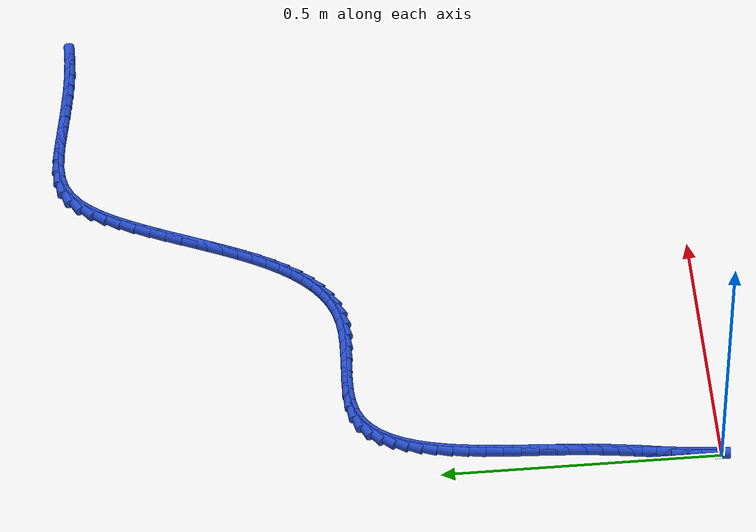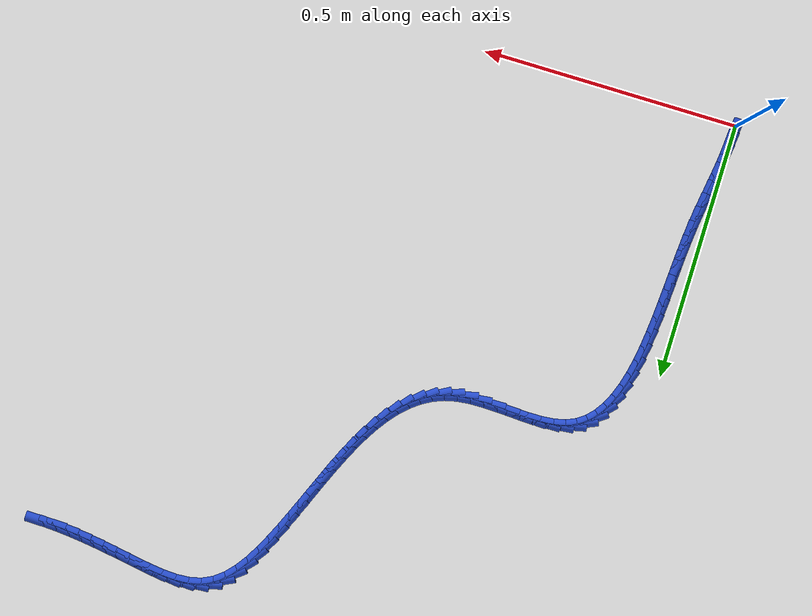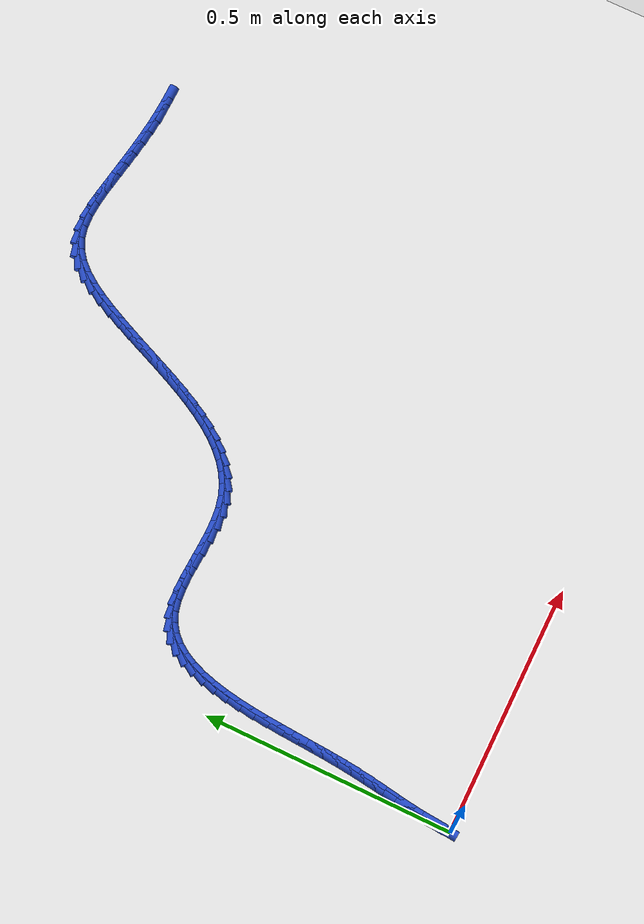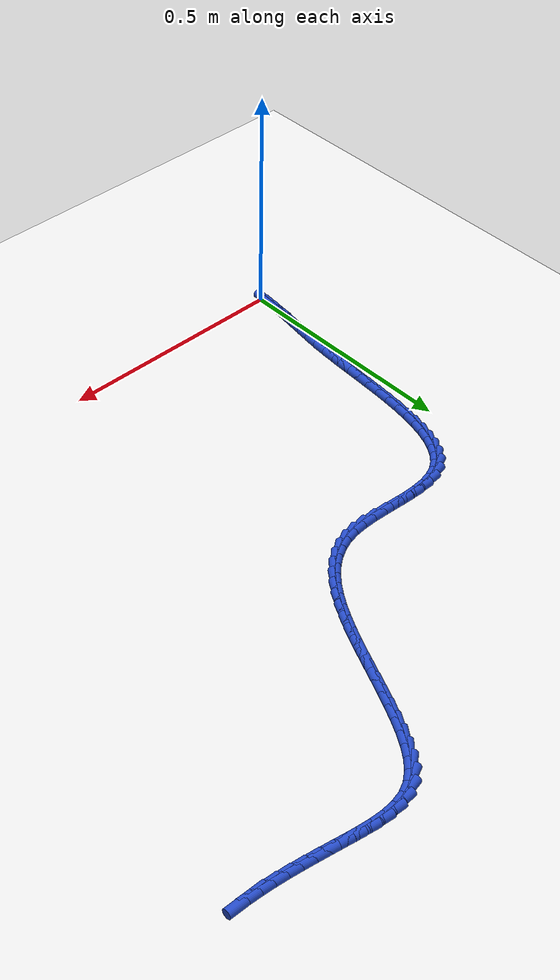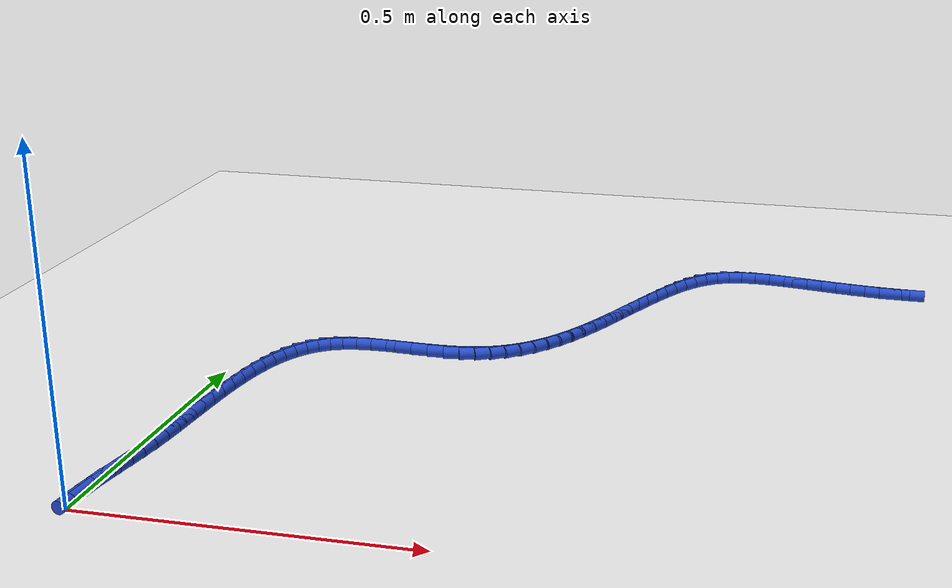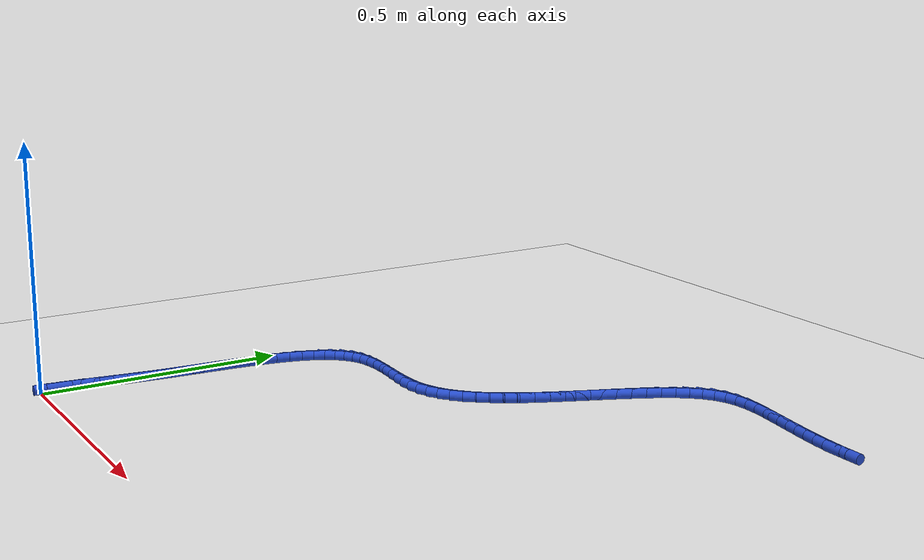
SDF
<sdf version="1.6">
 <world name="default">
  <model name="ground_plane">
   <static>1</static>
   <link name="link">
    <collision name="collision">
     <geometry><plane><normal>0 0 1</normal><size>100 100</size></plane></geometry>
     <surface><friction><ode><mu>100</mu><mu2>50</mu2></ode></friction></surface>
    </collision>
    <visual name="visual">
     <cast_shadows>0</cast_shadows>
     <geometry><plane><normal>0 0 1</normal><size>100 100</size></plane></geometry>
     <material>
      <script><uri>file://media/materials/scripts/gazebo.material</uri><name>Gazebo/WhiteGlow</name></script>
     </material>
    </visual>
   </link>
  </model>
  <model name="line">
   <link name="link_1">
    <pose>0.0013273431235054972 0.025375704951247566 0.01 0 1.57 1.4831038697782482</pose>
    <collision name="collision">
     <geometry><cylinder><radius>0.01</radius><length>0.08</length></cylinder></geometry>
    </collision>
    <visual name="visual">
     <material>
      <script><name>Gazebo/Blue</name><uri>file://media/materials/scripts/gazebo.material</uri></script>
     </material>
     <geometry><cylinder><radius>0.01</radius><length>0.08</length></cylinder></geometry>
    </visual>
   </link>
   <link name="link_2">
    <pose>0.003543218310889586 0.05057960898288051 0.01 0 1.57 1.4558953160932735</pose>
    <collision name="collision">
     <geometry><cylinder><radius>0.01</radius><length>0.08</length></cylinder></geometry>
    </collision>
    <visual name="visual">
     <material>
      <script><name>Gazebo/Blue</name><uri>file://media/materials/scripts/gazebo.material</uri></script>
     </material>
     <geometry><cylinder><radius>0.01</radius><length>0.08</length></cylinder></geometry>
    </visual>
   </link>
   <link name="link_3">
    <pose>0.006453111025996179 0.07579327515895934 0.01 0 1.57 1.4373915896565748</pose>
    <collision name="collision">
     <geometry><cylinder><radius>0.01</radius><length>0.08</length></cylinder></geometry>
    </collision>
    <visual name="visual">
     <material>
      <script><name>Gazebo/Blue</name><uri>file://media/materials/scripts/gazebo.material</uri></script>
     </material>
     <geometry><cylinder><radius>0.01</radius><length>0.08</length></cylinder></geometry>
    </visual>
   </link>
   <link name="link_4">
    <pose>0.009862506732669196 0.1011982665435445 0.01 0 1.57 1.4276894007576038</pose>
    <collision name="collision">
     <geometry><cylinder><radius>0.01</radius><length>0.08</length></cylinder></geometry>
    </collision>
    <visual name="visual">
     <material>
      <script><name>Gazebo/Blue</name><uri>file://media/materials/scripts/gazebo.material</uri></script>
     </material>
     <geometry><cylinder><radius>0.01</radius><length>0.08</length></cylinder></geometry>
    </visual>
   </link>
   <link name="link_5">
    <pose>0.013576890894752551 0.1269761462006965 0.01 0 1.57 1.4265518259724992</pose>
    <collision name="collision">
     <geometry><cylinder><radius>0.01</radius><length>0.08</length></cylinder></geometry>
    </collision>
    <visual name="visual">
     <material>
      <script><name>Gazebo/Blue</name><uri>file://media/materials/scripts/gazebo.material</uri></script>
     </material>
     <geometry><cylinder><radius>0.01</radius><length>0.08</length></cylinder></geometry>
    </visual>
   </link>
   <link name="link_6">
    <pose>0.01740174897609017 0.15330847719447588 0.01 0 1.57 1.4334672283953678</pose>
    <collision name="collision">
     <geometry><cylinder><radius>0.01</radius><length>0.08</length></cylinder></geometry>
    </collision>
    <visual name="visual">
     <material>
      <script><name>Gazebo/Blue</name><uri>file://media/materials/scripts/gazebo.material</uri></script>
     </material>
     <geometry><cylinder><radius>0.01</radius><length>0.08</length></cylinder></geometry>
    </visual>
   </link>
   <link name="link_7">
    <pose>0.021142566440525958 0.1803768225889431 0.01 0 1.57 1.447707330328703</pose>
    <collision name="collision">
     <geometry><cylinder><radius>0.01</radius><length>0.08</length></cylinder></geometry>
    </collision>
    <visual name="visual">
     <material>
      <script><name>Gazebo/Blue</name><uri>file://media/materials/scripts/gazebo.material</uri></script>
     </material>
     <geometry><cylinder><radius>0.01</radius><length>0.08</length></cylinder></geometry>
    </visual>
   </link>
   <link name="link_8">
    <pose>0.02460482875190385 0.20836274544815864 0.01 0 1.57 1.4683490416714402</pose>
    <collision name="collision">
     <geometry><cylinder><radius>0.01</radius><length>0.08</length></cylinder></geometry>
    </collision>
    <visual name="visual">
     <material>
      <script><name>Gazebo/Blue</name><uri>file://media/materials/scripts/gazebo.material</uri></script>
     </material>
     <geometry><cylinder><radius>0.01</radius><length>0.08</length></cylinder></geometry>
    </visual>
   </link>
   <link name="link_9">
    <pose>0.027594875719136228 0.23744676667266695 0.01 0 1.57 1.489880821835114</pose>
    <collision name="collision">
     <geometry><cylinder><radius>0.01</radius><length>0.08</length></cylinder></geometry>
    </collision>
    <visual name="visual">
     <material>
      <script><name>Gazebo/Blue</name><uri>file://media/materials/scripts/gazebo.material</uri></script>
     </material>
     <geometry><cylinder><radius>0.01</radius><length>0.08</length></cylinder></geometry>
    </visual>
   </link>
   <link name="link_10">
    <pose>0.030044636717430816 0.2676562080999955 0.01 0 1.57 1.5033187484475186</pose>
    <collision name="collision">
     <geometry><cylinder><radius>0.01</radius><length>0.08</length></cylinder></geometry>
    </collision>
    <visual name="visual">
     <material>
      <script><name>Gazebo/Blue</name><uri>file://media/materials/scripts/gazebo.material</uri></script>
     </material>
     <geometry><cylinder><radius>0.01</radius><length>0.08</length></cylinder></geometry>
    </visual>
   </link>
   <link name="link_11">
    <pose>0.032142922190807964 0.29870503799691056 0.01 0 1.57 1.5085578318496928</pose>
    <collision name="collision">
     <geometry><cylinder><radius>0.01</radius><length>0.08</length></cylinder></geometry>
    </collision>
    <visual name="visual">
     <material>
      <script><name>Gazebo/Blue</name><uri>file://media/materials/scripts/gazebo.material</uri></script>
     </material>
     <geometry><cylinder><radius>0.01</radius><length>0.08</length></cylinder></geometry>
    </visual>
   </link>
   <link name="link_12">
    <pose>0.03410995069347177 0.3302689117894446 0.01 0 1.57 1.5061403062061889</pose>
    <collision name="collision">
     <geometry><cylinder><radius>0.01</radius><length>0.08</length></cylinder></geometry>
    </collision>
    <visual name="visual">
     <material>
      <script><name>Gazebo/Blue</name><uri>file://media/materials/scripts/gazebo.material</uri></script>
     </material>
     <geometry><cylinder><radius>0.01</radius><length>0.08</length></cylinder></geometry>
    </visual>
   </link>
   <link name="link_13">
    <pose>0.03616594077962635 0.3620234849036305 0.01 0 1.57 1.4961377276590273</pose>
    <collision name="collision">
     <geometry><cylinder><radius>0.01</radius><length>0.08</length></cylinder></geometry>
    </collision>
    <visual name="visual">
     <material>
      <script><name>Gazebo/Blue</name><uri>file://media/materials/scripts/gazebo.material</uri></script>
     </material>
     <geometry><cylinder><radius>0.01</radius><length>0.08</length></cylinder></geometry>
    </visual>
   </link>
   <link name="link_14">
    <pose>0.03853111100347581 0.3936444127655007 0.01 0 1.57 1.4781770966286956</pose>
    <collision name="collision">
     <geometry><cylinder><radius>0.01</radius><length>0.08</length></cylinder></geometry>
    </collision>
    <visual name="visual">
     <material>
      <script><name>Gazebo/Blue</name><uri>file://media/materials/scripts/gazebo.material</uri></script>
     </material>
     <geometry><cylinder><radius>0.01</radius><length>0.08</length></cylinder></geometry>
    </visual>
   </link>
   <link name="link_15">
    <pose>0.04142567991922423 0.4248073508010879 0.01 0 1.57 1.4514156284007513</pose>
    <collision name="collision">
     <geometry><cylinder><radius>0.01</radius><length>0.08</length></cylinder></geometry>
    </collision>
    <visual name="visual">
     <material>
      <script><name>Gazebo/Blue</name><uri>file://media/materials/scripts/gazebo.material</uri></script>
     </material>
     <geometry><cylinder><radius>0.01</radius><length>0.08</length></cylinder></geometry>
    </visual>
   </link>
   <link name="link_16">
    <pose>0.045069866081075736 0.4551879544364248 0.01 0 1.57 1.4144669831270131</pose>
    <collision name="collision">
     <geometry><cylinder><radius>0.01</radius><length>0.08</length></cylinder></geometry>
    </collision>
    <visual name="visual">
     <material>
      <script><name>Gazebo/Blue</name><uri>file://media/materials/scripts/gazebo.material</uri></script>
     </material>
     <geometry><cylinder><radius>0.01</radius><length>0.08</length></cylinder></geometry>
    </visual>
   </link>
   <link name="link_17">
    <pose>0.04968388804323444 0.48446187909754396 0.01 0 1.57 1.3652814309231334</pose>
    <collision name="collision">
     <geometry><cylinder><radius>0.01</radius><length>0.08</length></cylinder></geometry>
    </collision>
    <visual name="visual">
     <material>
      <script><name>Gazebo/Blue</name><uri>file://media/materials/scripts/gazebo.material</uri></script>
     </material>
     <geometry><cylinder><radius>0.01</radius><length>0.08</length></cylinder></geometry>
    </visual>
   </link>
   <link name="link_18">
    <pose>0.0554879643599044 0.5123047802104779 0.01 0 1.57 1.300995292122116</pose>
    <collision name="collision">
     <geometry><cylinder><radius>0.01</radius><length>0.08</length></cylinder></geometry>
    </collision>
    <visual name="visual">
     <material>
      <script><name>Gazebo/Blue</name><uri>file://media/materials/scripts/gazebo.material</uri></script>
     </material>
     <geometry><cylinder><radius>0.01</radius><length>0.08</length></cylinder></geometry>
    </visual>
   </link>
   <link name="link_19">
    <pose>0.0627023135852898 0.5383923132012595 0.01 0 1.57 1.217811283853974</pose>
    <collision name="collision">
     <geometry><cylinder><radius>0.01</radius><length>0.08</length></cylinder></geometry>
    </collision>
    <visual name="visual">
     <material>
      <script><name>Gazebo/Blue</name><uri>file://media/materials/scripts/gazebo.material</uri></script>
     </material>
     <geometry><cylinder><radius>0.01</radius><length>0.08</length></cylinder></geometry>
    </visual>
   </link>
   <link name="link_20">
    <pose>0.07154715427359462 0.562400133495921 0.01 0 1.57 1.111093956603589</pose>
    <collision name="collision">
     <geometry><cylinder><radius>0.01</radius><length>0.08</length></cylinder></geometry>
    </collision>
    <visual name="visual">
     <material>
      <script><name>Gazebo/Blue</name><uri>file://media/materials/scripts/gazebo.material</uri></script>
     </material>
     <geometry><cylinder><radius>0.01</radius><length>0.08</length></cylinder></geometry>
    </visual>
   </link>
   <link name="link_21">
    <pose>0.08224270497902311 0.5840038965204956 0.01 0 1.57 0.9761151240698267</pose>
    <collision name="collision">
     <geometry><cylinder><radius>0.01</radius><length>0.08</length></cylinder></geometry>
    </collision>
    <visual name="visual">
     <material>
      <script><name>Gazebo/Blue</name><uri>file://media/materials/scripts/gazebo.material</uri></script>
     </material>
     <geometry><cylinder><radius>0.01</radius><length>0.08</length></cylinder></geometry>
    </visual>
   </link>
   <link name="link_22">
    <pose>0.09500918425577928 0.6028792577010152 0.01 0 1.57 0.810165843333273</pose>
    <collision name="collision">
     <geometry><cylinder><radius>0.01</radius><length>0.08</length></cylinder></geometry>
    </collision>
    <visual name="visual">
     <material>
      <script><name>Gazebo/Blue</name><uri>file://media/materials/scripts/gazebo.material</uri></script>
     </material>
     <geometry><cylinder><radius>0.01</radius><length>0.08</length></cylinder></geometry>
    </visual>
   </link>
   <link name="link_23">
    <pose>0.11006681065806723 0.6187018724635133 0.01 0 1.57 0.6163280557996347</pose>
    <collision name="collision">
     <geometry><cylinder><radius>0.01</radius><length>0.08</length></cylinder></geometry>
    </collision>
    <visual name="visual">
     <material>
      <script><name>Gazebo/Blue</name><uri>file://media/materials/scripts/gazebo.material</uri></script>
     </material>
     <geometry><cylinder><radius>0.01</radius><length>0.08</length></cylinder></geometry>
    </visual>
   </link>
   <link name="link_24">
    <pose>0.1276358027400911 0.6311473962340217 0.01 0 1.57 0.4068288492646526</pose>
    <collision name="collision">
     <geometry><cylinder><radius>0.01</radius><length>0.08</length></cylinder></geometry>
    </collision>
    <visual name="visual">
     <material>
      <script><name>Gazebo/Blue</name><uri>file://media/materials/scripts/gazebo.material</uri></script>
     </material>
     <geometry><cylinder><radius>0.01</radius><length>0.08</length></cylinder></geometry>
    </visual>
   </link>
   <link name="link_25">
    <pose>0.147934940979745 0.6398936085173469 0.01 0 1.57 0.21703779530122946</pose>
    <collision name="collision">
     <geometry><cylinder><radius>0.01</radius><length>0.08</length></cylinder></geometry>
    </collision>
    <visual name="visual">
     <material>
      <script><name>Gazebo/Blue</name><uri>file://media/materials/scripts/gazebo.material</uri></script>
     </material>
     <geometry><cylinder><radius>0.01</radius><length>0.08</length></cylinder></geometry>
    </visual>
   </link>
   <link name="link_26">
    <pose>0.1709463238221766 0.644967874774373 0.01 0 1.57 0.08568359429457617</pose>
    <collision name="collision">
     <geometry><cylinder><radius>0.01</radius><length>0.08</length></cylinder></geometry>
    </collision>
    <visual name="visual">
     <material>
      <script><name>Gazebo/Blue</name><uri>file://media/materials/scripts/gazebo.material</uri></script>
     </material>
     <geometry><cylinder><radius>0.01</radius><length>0.08</length></cylinder></geometry>
    </visual>
   </link>
   <link name="link_27">
    <pose>0.19615408535262951 0.6471330676983266 0.01 0 1.57 0.004173853943164832</pose>
    <collision name="collision">
     <geometry><cylinder><radius>0.01</radius><length>0.08</length></cylinder></geometry>
    </collision>
    <visual name="visual">
     <material>
      <script><name>Gazebo/Blue</name><uri>file://media/materials/scripts/gazebo.material</uri></script>
     </material>
     <geometry><cylinder><radius>0.01</radius><length>0.08</length></cylinder></geometry>
    </visual>
   </link>
   <link name="link_28">
    <pose>0.22297941340466867 0.6472450333497807 0.01 0 1.57 -0.038934246516687934</pose>
    <collision name="collision">
     <geometry><cylinder><radius>0.01</radius><length>0.08</length></cylinder></geometry>
    </collision>
    <visual name="visual">
     <material>
      <script><name>Gazebo/Blue</name><uri>file://media/materials/scripts/gazebo.material</uri></script>
     </material>
     <geometry><cylinder><radius>0.01</radius><length>0.08</length></cylinder></geometry>
    </visual>
   </link>
   <link name="link_29">
    <pose>0.2508434958118586 0.646159617789307 0.01 0 1.57 -0.05033696028064199</pose>
    <collision name="collision">
     <geometry><cylinder><radius>0.01</radius><length>0.08</length></cylinder></geometry>
    </collision>
    <visual name="visual">
     <material>
      <script><name>Gazebo/Blue</name><uri>file://media/materials/scripts/gazebo.material</uri></script>
     </material>
     <geometry><cylinder><radius>0.01</radius><length>0.08</length></cylinder></geometry>
    </visual>
   </link>
   <link name="link_30">
    <pose>0.2791675204077644 0.6447326670774781 0.01 0 1.57 -0.03234591361597923</pose>
    <collision name="collision">
     <geometry><cylinder><radius>0.01</radius><length>0.08</length></cylinder></geometry>
    </collision>
    <visual name="visual">
     <material>
      <script><name>Gazebo/Blue</name><uri>file://media/materials/scripts/gazebo.material</uri></script>
     </material>
     <geometry><cylinder><radius>0.01</radius><length>0.08</length></cylinder></geometry>
    </visual>
   </link>
   <link name="link_31">
    <pose>0.3073726750259505 0.6438200272748664 0.01 0 1.57 0.016630934942488275</pose>
    <collision name="collision">
     <geometry><cylinder><radius>0.01</radius><length>0.08</length></cylinder></geometry>
    </collision>
    <visual name="visual">
     <material>
      <script><name>Gazebo/Blue</name><uri>file://media/materials/scripts/gazebo.material</uri></script>
     </material>
     <geometry><cylinder><radius>0.01</radius><length>0.08</length></cylinder></geometry>
    </visual>
   </link>
   <link name="link_32">
    <pose>0.3348801474999821 0.6442775444420444 0.01 0 1.57 0.10194879602931628</pose>
    <collision name="collision">
     <geometry><cylinder><radius>0.01</radius><length>0.08</length></cylinder></geometry>
    </collision>
    <visual name="visual">
     <material>
      <script><name>Gazebo/Blue</name><uri>file://media/materials/scripts/gazebo.material</uri></script>
     </material>
     <geometry><cylinder><radius>0.01</radius><length>0.08</length></cylinder></geometry>
    </visual>
   </link>
   <link name="link_33">
    <pose>0.3611111256634238 0.6469610646395844 0.01 0 1.57 0.22973171142016255</pose>
    <collision name="collision">
     <geometry><cylinder><radius>0.01</radius><length>0.08</length></cylinder></geometry>
    </collision>
    <visual name="visual">
     <material>
      <script><name>Gazebo/Blue</name><uri>file://media/materials/scripts/gazebo.material</uri></script>
     </material>
     <geometry><cylinder><radius>0.01</radius><length>0.08</length></cylinder></geometry>
    </visual>
   </link>
   <link name="link_34">
    <pose>0.38552446452016487 0.6526703774179967 0.01 0 1.57 0.37688570544076144</pose>
    <collision name="collision">
     <geometry><cylinder><radius>0.01</radius><length>0.08</length></cylinder></geometry>
    </collision>
    <visual name="visual">
     <material>
      <script><name>Gazebo/Blue</name><uri>file://media/materials/scripts/gazebo.material</uri></script>
     </material>
     <geometry><cylinder><radius>0.01</radius><length>0.08</length></cylinder></geometry>
    </visual>
   </link>
   <link name="link_35">
    <pose>0.4080066002983976 0.6615689433708777 0.01 0 1.57 0.5196748217189355</pose>
    <collision name="collision">
     <geometry><cylinder><radius>0.01</radius><length>0.08</length></cylinder></geometry>
    </collision>
    <visual name="visual">
     <material>
      <script><name>Gazebo/Blue</name><uri>file://media/materials/scripts/gazebo.material</uri></script>
     </material>
     <geometry><cylinder><radius>0.01</radius><length>0.08</length></cylinder></geometry>
    </visual>
   </link>
   <link name="link_36">
    <pose>0.42871501488762936 0.6734168513038742 0.01 0 1.57 0.6511174869187879</pose>
    <collision name="collision">
     <geometry><cylinder><radius>0.01</radius><length>0.08</length></cylinder></geometry>
    </collision>
    <visual name="visual">
     <material>
      <script><name>Gazebo/Blue</name><uri>file://media/materials/scripts/gazebo.material</uri></script>
     </material>
     <geometry><cylinder><radius>0.01</radius><length>0.08</length></cylinder></geometry>
    </visual>
   </link>
   <link name="link_37">
    <pose>0.4478114962008734 0.6879677817724799 0.01 0 1.57 0.7669693919560285</pose>
    <collision name="collision">
     <geometry><cylinder><radius>0.01</radius><length>0.08</length></cylinder></geometry>
    </collision>
    <visual name="visual">
     <material>
      <script><name>Gazebo/Blue</name><uri>file://media/materials/scripts/gazebo.material</uri></script>
     </material>
     <geometry><cylinder><radius>0.01</radius><length>0.08</length></cylinder></geometry>
    </visual>
   </link>
   <link name="link_38">
    <pose>0.4654578321511435 0.7049754153321884 0.01 0 1.57 0.8656180144133736</pose>
    <collision name="collision">
     <geometry><cylinder><radius>0.01</radius><length>0.08</length></cylinder></geometry>
    </collision>
    <visual name="visual">
     <material>
      <script><name>Gazebo/Blue</name><uri>file://media/materials/scripts/gazebo.material</uri></script>
     </material>
     <geometry><cylinder><radius>0.01</radius><length>0.08</length></cylinder></geometry>
    </visual>
   </link>
   <link name="link_39">
    <pose>0.48181581065145324 0.7241934325384934 0.01 0 1.57 0.9473857293996624</pose>
    <collision name="collision">
     <geometry><cylinder><radius>0.01</radius><length>0.08</length></cylinder></geometry>
    </collision>
    <visual name="visual">
     <material>
      <script><name>Gazebo/Blue</name><uri>file://media/materials/scripts/gazebo.material</uri></script>
     </material>
     <geometry><cylinder><radius>0.01</radius><length>0.08</length></cylinder></geometry>
    </visual>
   </link>
   <link name="link_40">
    <pose>0.49704721961481596 0.7453755139468878 0.01 0 1.57 1.013635385515416</pose>
    <collision name="collision">
     <geometry><cylinder><radius>0.01</radius><length>0.08</length></cylinder></geometry>
    </collision>
    <visual name="visual">
     <material>
      <script><name>Gazebo/Blue</name><uri>file://media/materials/scripts/gazebo.material</uri></script>
     </material>
     <geometry><cylinder><radius>0.01</radius><length>0.08</length></cylinder></geometry>
    </visual>
   </link>
   <link name="link_41">
    <pose>0.5113138469542453 0.7682753401128655 0.01 0 1.57 1.0660823713414747</pose>
    <collision name="collision">
     <geometry><cylinder><radius>0.01</radius><length>0.08</length></cylinder></geometry>
    </collision>
    <visual name="visual">
     <material>
      <script><name>Gazebo/Blue</name><uri>file://media/materials/scripts/gazebo.material</uri></script>
     </material>
     <geometry><cylinder><radius>0.01</radius><length>0.08</length></cylinder></geometry>
    </visual>
   </link>
   <link name="link_42">
    <pose>0.5247774805827551 0.7926465915919201 0.01 0 1.57 1.1063911110405942</pose>
    <collision name="collision">
     <geometry><cylinder><radius>0.01</radius><length>0.08</length></cylinder></geometry>
    </collision>
    <visual name="visual">
     <material>
      <script><name>Gazebo/Blue</name><uri>file://media/materials/scripts/gazebo.material</uri></script>
     </material>
     <geometry><cylinder><radius>0.01</radius><length>0.08</length></cylinder></geometry>
    </visual>
   </link>
   <link name="link_43">
    <pose>0.5375999084133589 0.8182429489395453 0.01 0 1.57 1.135985259736726</pose>
    <collision name="collision">
     <geometry><cylinder><radius>0.01</radius><length>0.08</length></cylinder></geometry>
    </collision>
    <visual name="visual">
     <material>
      <script><name>Gazebo/Blue</name><uri>file://media/materials/scripts/gazebo.material</uri></script>
     </material>
     <geometry><cylinder><radius>0.01</radius><length>0.08</length></cylinder></geometry>
    </visual>
   </link>
   <link name="link_44">
    <pose>0.5499429183590699 0.8448180927112341 0.01 0 1.57 1.1559817338353384</pose>
    <collision name="collision">
     <geometry><cylinder><radius>0.01</radius><length>0.08</length></cylinder></geometry>
    </collision>
    <visual name="visual">
     <material>
      <script><name>Gazebo/Blue</name><uri>file://media/materials/scripts/gazebo.material</uri></script>
     </material>
     <geometry><cylinder><radius>0.01</radius><length>0.08</length></cylinder></geometry>
    </visual>
   </link>
   <link name="link_45">
    <pose>0.5619682983329021 0.8721257034624803 0.01 0 1.57 1.167184098190263</pose>
    <collision name="collision">
     <geometry><cylinder><radius>0.01</radius><length>0.08</length></cylinder></geometry>
    </collision>
    <visual name="visual">
     <material>
      <script><name>Gazebo/Blue</name><uri>file://media/materials/scripts/gazebo.material</uri></script>
     </material>
     <geometry><cylinder><radius>0.01</radius><length>0.08</length></cylinder></geometry>
    </visual>
   </link>
   <link name="link_46">
    <pose>0.5738378362478687 0.8999194617487771 0.01 0 1.57 1.17009828035698</pose>
    <collision name="collision">
     <geometry><cylinder><radius>0.01</radius><length>0.08</length></cylinder></geometry>
    </collision>
    <visual name="visual">
     <material>
      <script><name>Gazebo/Blue</name><uri>file://media/materials/scripts/gazebo.material</uri></script>
     </material>
     <geometry><cylinder><radius>0.01</radius><length>0.08</length></cylinder></geometry>
    </visual>
   </link>
   <link name="link_47">
    <pose>0.5857133200169835 0.9279530481256186 0.01 0 1.57 1.1649522408020414</pose>
    <collision name="collision">
     <geometry><cylinder><radius>0.01</radius><length>0.08</length></cylinder></geometry>
    </collision>
    <visual name="visual">
     <material>
      <script><name>Gazebo/Blue</name><uri>file://media/materials/scripts/gazebo.material</uri></script>
     </material>
     <geometry><cylinder><radius>0.01</radius><length>0.08</length></cylinder></geometry>
    </visual>
   </link>
   <link name="link_48">
    <pose>0.5977565375532603 0.955980143148498 0.01 0 1.57 1.1517120613173357</pose>
    <collision name="collision">
     <geometry><cylinder><radius>0.01</radius><length>0.08</length></cylinder></geometry>
    </collision>
    <visual name="visual">
     <material>
      <script><name>Gazebo/Blue</name><uri>file://media/materials/scripts/gazebo.material</uri></script>
     </material>
     <geometry><cylinder><radius>0.01</radius><length>0.08</length></cylinder></geometry>
    </visual>
   </link>
   <link name="link_49">
    <pose>0.6101292767697122 0.9837544273729087 0.01 0 1.57 1.1300278328495221</pose>
    <collision name="collision">
     <geometry><cylinder><radius>0.01</radius><length>0.08</length></cylinder></geometry>
    </collision>
    <visual name="visual">
     <material>
      <script><name>Gazebo/Blue</name><uri>file://media/materials/scripts/gazebo.material</uri></script>
     </material>
     <geometry><cylinder><radius>0.01</radius><length>0.08</length></cylinder></geometry>
    </visual>
   </link>
   <link name="link_50">
    <pose>0.6229941832206943 1.011026781777434 0.01 0 1.57 1.0948579477988312</pose>
    <collision name="collision">
     <geometry><cylinder><radius>0.01</radius><length>0.08</length></cylinder></geometry>
    </collision>
    <visual name="visual">
     <material>
      <script><name>Gazebo/Blue</name><uri>file://media/materials/scripts/gazebo.material</uri></script>
     </material>
     <geometry><cylinder><radius>0.01</radius><length>0.08</length></cylinder></geometry>
    </visual>
   </link>
   <link name="link_51">
    <pose>0.6365701661014206 1.0373644273626608 0.01 0 1.57 1.036645545284551</pose>
    <collision name="collision">
     <geometry><cylinder><radius>0.01</radius><length>0.08</length></cylinder></geometry>
    </collision>
    <visual name="visual">
     <material>
      <script><name>Gazebo/Blue</name><uri>file://media/materials/scripts/gazebo.material</uri></script>
     </material>
     <geometry><cylinder><radius>0.01</radius><length>0.08</length></cylinder></geometry>
    </visual>
   </link>
   <link name="link_52">
    <pose>0.651166224523165 1.0620405068976824 0.01 0 1.57 0.9495851570418905</pose>
    <collision name="collision">
     <geometry><cylinder><radius>0.01</radius><length>0.08</length></cylinder></geometry>
    </collision>
    <visual name="visual">
     <material>
      <script><name>Gazebo/Blue</name><uri>file://media/materials/scripts/gazebo.material</uri></script>
     </material>
     <geometry><cylinder><radius>0.01</radius><length>0.08</length></cylinder></geometry>
    </visual>
   </link>
   <link name="link_53">
    <pose>0.6670994540881329 1.084301733981288 0.01 0 1.57 0.82642115321409</pose>
    <collision name="collision">
     <geometry><cylinder><radius>0.01</radius><length>0.08</length></cylinder></geometry>
    </collision>
    <visual name="visual">
     <material>
      <script><name>Gazebo/Blue</name><uri>file://media/materials/scripts/gazebo.material</uri></script>
     </material>
     <geometry><cylinder><radius>0.01</radius><length>0.08</length></cylinder></geometry>
    </visual>
   </link>
   <link name="link_54">
    <pose>0.6846869503985293 1.1033948222122654 0.01 0 1.57 0.6597426627919771</pose>
    <collision name="collision">
     <geometry><cylinder><radius>0.01</radius><length>0.08</length></cylinder></geometry>
    </collision>
    <visual name="visual">
     <material>
      <script><name>Gazebo/Blue</name><uri>file://media/materials/scripts/gazebo.material</uri></script>
     </material>
     <geometry><cylinder><radius>0.01</radius><length>0.08</length></cylinder></geometry>
    </visual>
   </link>
   <link name="link_55">
    <pose>0.7042458090565595 1.1185664851894042 0.01 0 1.57 0.44811022827380975</pose>
    <collision name="collision">
     <geometry><cylinder><radius>0.01</radius><length>0.08</length></cylinder></geometry>
    </collision>
    <visual name="visual">
     <material>
      <script><name>Gazebo/Blue</name><uri>file://media/materials/scripts/gazebo.material</uri></script>
     </material>
     <geometry><cylinder><radius>0.01</radius><length>0.08</length></cylinder></geometry>
    </visual>
   </link>
   <link name="link_56">
    <pose>0.7260908041533228 1.1290679522054774 0.01 0 1.57 0.22888808641540567</pose>
    <collision name="collision">
     <geometry><cylinder><radius>0.01</radius><length>0.08</length></cylinder></geometry>
    </collision>
    <visual name="visual">
     <material>
      <script><name>Gazebo/Blue</name><uri>file://media/materials/scripts/gazebo.material</uri></script>
     </material>
     <geometry><cylinder><radius>0.01</radius><length>0.08</length></cylinder></geometry>
    </visual>
   </link>
   <link name="link_57">
    <pose>0.7502554210124772 1.1346976022058533 0.01 0 1.57 0.06226773911061828</pose>
    <collision name="collision">
     <geometry><cylinder><radius>0.01</radius><length>0.08</length></cylinder></geometry>
    </collision>
    <visual name="visual">
     <material>
      <script><name>Gazebo/Blue</name><uri>file://media/materials/scripts/gazebo.material</uri></script>
     </material>
     <geometry><cylinder><radius>0.01</radius><length>0.08</length></cylinder></geometry>
    </visual>
   </link>
   <link name="link_58">
    <pose>0.7762266326340874 1.1363168641492825 0.01 0 1.57 -0.05169660642214146</pose>
    <collision name="collision">
     <geometry><cylinder><radius>0.01</radius><length>0.08</length></cylinder></geometry>
    </collision>
    <visual name="visual">
     <material>
      <script><name>Gazebo/Blue</name><uri>file://media/materials/scripts/gazebo.material</uri></script>
     </material>
     <geometry><cylinder><radius>0.01</radius><length>0.08</length></cylinder></geometry>
    </visual>
   </link>
   <link name="link_59">
    <pose>0.8034285922448126 1.1349093610568948 0.01 0 1.57 -0.12324278193667765</pose>
    <collision name="collision">
     <geometry><cylinder><radius>0.01</radius><length>0.08</length></cylinder></geometry>
    </collision>
    <visual name="visual">
     <material>
      <script><name>Gazebo/Blue</name><uri>file://media/materials/scripts/gazebo.material</uri></script>
     </material>
     <geometry><cylinder><radius>0.01</radius><length>0.08</length></cylinder></geometry>
    </visual>
   </link>
   <link name="link_60">
    <pose>0.8312854530713119 1.1314587159498193 0.01 0 1.57 -0.1600656284863573</pose>
    <collision name="collision">
     <geometry><cylinder><radius>0.01</radius><length>0.08</length></cylinder></geometry>
    </collision>
    <visual name="visual">
     <material>
      <script><name>Gazebo/Blue</name><uri>file://media/materials/scripts/gazebo.material</uri></script>
     </material>
     <geometry><cylinder><radius>0.01</radius><length>0.08</length></cylinder></geometry>
    </visual>
   </link>
   <link name="link_61">
    <pose>0.8592213683402445 1.1269485518491849 0.01 0 1.57 -0.16826718416376282</pose>
    <collision name="collision">
     <geometry><cylinder><radius>0.01</radius><length>0.08</length></cylinder></geometry>
    </collision>
    <visual name="visual">
     <material>
      <script><name>Gazebo/Blue</name><uri>file://media/materials/scripts/gazebo.material</uri></script>
     </material>
     <geometry><cylinder><radius>0.01</radius><length>0.08</length></cylinder></geometry>
    </visual>
   </link>
   <link name="link_62">
    <pose>0.8867292380360123 1.122275694413723 0.01 0 1.57 -0.16457860910920244</pose>
    <collision name="collision">
     <geometry><cylinder><radius>0.01</radius><length>0.08</length></cylinder></geometry>
    </collision>
    <visual name="visual">
     <material>
      <script><name>Gazebo/Blue</name><uri>file://media/materials/scripts/gazebo.material</uri></script>
     </material>
     <geometry><cylinder><radius>0.01</radius><length>0.08</length></cylinder></geometry>
    </visual>
   </link>
   <link name="link_63">
    <pose>0.9137347034135185 1.1177906046136612 0.01 0 1.57 -0.15511378818893273</pose>
    <collision name="collision">
     <geometry><cylinder><radius>0.01</radius><length>0.08</length></cylinder></geometry>
    </collision>
    <visual name="visual">
     <material>
      <script><name>Gazebo/Blue</name><uri>file://media/materials/scripts/gazebo.material</uri></script>
     </material>
     <geometry><cylinder><radius>0.01</radius><length>0.08</length></cylinder></geometry>
    </visual>
   </link>
   <link name="link_64">
    <pose>0.9403313618412734 1.1136316876345143 0.01 0 1.57 -0.13966881673758877</pose>
    <collision name="collision">
     <geometry><cylinder><radius>0.01</radius><length>0.08</length></cylinder></geometry>
    </collision>
    <visual name="visual">
     <material>
      <script><name>Gazebo/Blue</name><uri>file://media/materials/scripts/gazebo.material</uri></script>
     </material>
     <geometry><cylinder><radius>0.01</radius><length>0.08</length></cylinder></geometry>
    </visual>
   </link>
   <link name="link_65">
    <pose>0.9666131816275629 1.1099368803256133 0.01 0 1.57 -0.11812168404609973</pose>
    <collision name="collision">
     <geometry><cylinder><radius>0.01</radius><length>0.08</length></cylinder></geometry>
    </collision>
    <visual name="visual">
     <material>
      <script><name>Gazebo/Blue</name><uri>file://media/materials/scripts/gazebo.material</uri></script>
     </material>
     <geometry><cylinder><radius>0.01</radius><length>0.08</length></cylinder></geometry>
    </visual>
   </link>
   <link name="link_66">
    <pose>0.992674131080673 1.1068441195362897 0.01 0 1.57 -0.09047389719495277</pose>
    <collision name="collision">
     <geometry><cylinder><radius>0.01</radius><length>0.08</length></cylinder></geometry>
    </collision>
    <visual name="visual">
     <material>
      <script><name>Gazebo/Blue</name><uri>file://media/materials/scripts/gazebo.material</uri></script>
     </material>
     <geometry><cylinder><radius>0.01</radius><length>0.08</length></cylinder></geometry>
    </visual>
   </link>
   <link name="link_67">
    <pose>1.0186081785088894 1.1044913421158744 0.01 0 1.57 -0.05688042219752369</pose>
    <collision name="collision">
     <geometry><cylinder><radius>0.01</radius><length>0.08</length></cylinder></geometry>
    </collision>
    <visual name="visual">
     <material>
      <script><name>Gazebo/Blue</name><uri>file://media/materials/scripts/gazebo.material</uri></script>
     </material>
     <geometry><cylinder><radius>0.01</radius><length>0.08</length></cylinder></geometry>
    </visual>
   </link>
   <link name="link_68">
    <pose>1.0445092922204986 1.103016484913699 0.01 0 1.57 -0.017677748208934894</pose>
    <collision name="collision">
     <geometry><cylinder><radius>0.01</radius><length>0.08</length></cylinder></geometry>
    </collision>
    <visual name="visual">
     <material>
      <script><name>Gazebo/Blue</name><uri>file://media/materials/scripts/gazebo.material</uri></script>
     </material>
     <geometry><cylinder><radius>0.01</radius><length>0.08</length></cylinder></geometry>
    </visual>
   </link>
   <link name="link_272">
    <pose>0.003891660575158976 0.05025722566172135 0.01 0 1.57 1.4935156959050166</pose>
    <collision name="collision">
     <geometry><cylinder><radius>0.01</radius><length>0.08</length></cylinder></geometry>
    </collision>
    <visual name="visual">
     <material>
      <script><name>Gazebo/Blue</name><uri>file://media/materials/scripts/gazebo.material</uri></script>
     </material>
     <geometry><cylinder><radius>0.01</radius><length>0.08</length></cylinder></geometry>
    </visual>
   </link>
  </model>
 </world>
</sdf>
